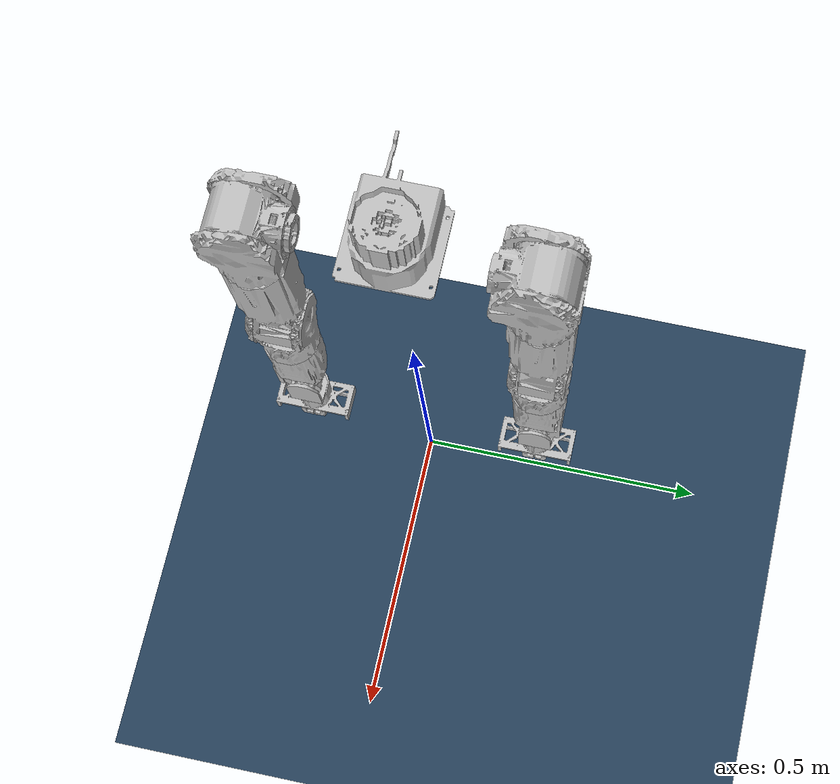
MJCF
<mujoco model="carm_d3">
  <option iterations="50" timestep="0.001" solver="PGS" gravity="0 0 -9.81" />

  <compiler angle="radian" meshdir="meshes" eulerseq="zyx" autolimits="true" />

  <default>
    <joint limited="true" damping="0.1" armature="0.01" frictionloss="0.1" />
    <geom condim="4" contype="1" conaffinity="15" friction="0.9 0.2 0.2" solref="0.001 2" />
    <motor ctrllimited="true" />
    <equality solref="0.001 2" />
    <default class="visualgeom">
      <geom material="visualgeom" condim="1" contype="0" conaffinity="0" />
    </default>
  </default>

  <asset>
    <mesh name="base_link" file="base_link.STL" />
    <mesh name="link1-LEFT" file="link1-LEFT.STL" />
    <mesh name="link2-LEFT" file="link2-LEFT.STL" />
    <mesh name="link3-LEFT" file="link3-LEFT.STL" />
    <mesh name="link4-LEFT" file="link4-LEFT.STL" />
    <mesh name="link5-LEFT" file="link5-LEFT.STL" />
    <mesh name="link6-LEFT" file="link6-LEFT.STL" />
    <mesh name="link7-LEFT" file="link7-LEFT.STL" />
    <mesh name="gripper_base" file="gripper_base.STL" />
    <mesh name="gripper_right" file="gripper_right.STL" />
    <mesh name="gripper_left" file="gripper_left.STL" />
    <mesh name="link1-RIGHT" file="link1-RIGHT.STL" />
    <mesh name="link2-RIGHT" file="link2-RIGHT.STL" />
    <mesh name="link3-RIGHT" file="link3-RIGHT.STL" />
    <mesh name="link4-RIGHT" file="link4-RIGHT.STL" />
    <mesh name="link5-RIGHT" file="link5-RIGHT.STL" />
    <mesh name="link6-RIGHT" file="link6-RIGHT.STL" />
    <mesh name="link7-RIGHT" file="link7-RIGHT.STL" />
    <texture type="2d" name="groundplane" builtin="checker" mark="edge" rgb1="0.2 0.3 0.4" rgb2="0.1 0.2 0.3"
      markrgb="0.8 0.8 0.8" width="300" height="300"/>
    <material name="groundplane" texture="groundplane" texuniform="true" texrepeat="5 5" reflectance="0.2"/>
    <material name="visualgeom" rgba="0.5 0.9 0.2 1" />
  </asset>

  <worldbody>
    <light directional="true" diffuse="0.4 0.4 0.4" specular="0.1 0.1 0.1" pos="0 0 5.0" dir="0 0 -1" castshadow="false" />
    <light directional="true" diffuse="0.6 0.6 0.6" specular="0.2 0.2 0.2" pos="0 0 4" dir="0 0 -1" />
    <geom name="floor" type="plane" pos="0 0 0" size="0 0 0.05" quat="1 0 0 0" material="groundplane" condim="3" conaffinity="15" />
    <camera name="fixed" pos="0 -3.0 1.3800389851226234" xyaxes="1 0 0 0 0 1" />
    <camera name="track" mode="trackcom" pos="0 -3.0 1.3800389851226234" xyaxes="1 0 0 0 0 1" />
    <body name="root" pos="0 0 0.8800389851226235" quat="1 0 0 0">
      <site name="imu" size="0.01" pos="0 0 0" />
      <geom type="mesh" contype="1" conaffinity="0" group="1" density="0" rgba="0.752941 0.752941 0.752941 1" mesh="base_link" class="visualgeom" />
      <geom type="mesh" rgba="0.752941 0.752941 0.752941 1" mesh="base_link" />
      <geom type="mesh" rgba="0.752941 0.752941 0.752941 1" mesh="base_link" contype="1" conaffinity="0" density="0" group="1" class="visualgeom" />
      <geom type="mesh" rgba="0.752941 0.752941 0.752941 1" mesh="base_link" />
      <body name="link1-LEFT" pos="0 0.13 0">
        <inertial pos="0.000986455 0.0667702 -0.000130249" quat="0.706988 0.707209 -0.00313411 -0.00362874" mass="1.68587" diaginertia="0.00133601 0.000845928 0.000766322" />
        <joint name="joint1-LEFT" damping="0.21311443" frictionloss="1.06226992" pos="0 0 0" axis="0 1 0" range="-2.79253 2.79253" actuatorfrcrange="-120 120" />
        <geom type="mesh" contype="1" conaffinity="0" group="1" density="0" rgba="0.752941 0.752941 0.752941 1" mesh="link1-LEFT" class="visualgeom" />
        <geom type="mesh" rgba="0.752941 0.752941 0.752941 1" mesh="link1-LEFT" />
        <geom type="mesh" rgba="0.752941 0.752941 0.752941 1" mesh="link1-LEFT" contype="1" conaffinity="0" density="0" group="1" class="visualgeom" />
        <geom type="mesh" rgba="0.752941 0.752941 0.752941 1" mesh="link1-LEFT" />
        <body name="link2-LEFT" pos="0 0.072 0">
          <inertial pos="0.0040664 -0.0011712 -0.11066" quat="0.92602 0.127559 0.347947 -0.0717581" mass="1.4556" diaginertia="0.00153465 0.00126897 0.00122267" />
          <joint name="joint2-LEFT" damping="0.21311443" frictionloss="1.06226992" pos="0 0 0" axis="1 0 0" range="-0.261799 3.14159" actuatorfrcrange="-120 120" />
          <geom type="mesh" contype="1" conaffinity="0" group="1" density="0" rgba="0.75294 0.75294 0.75294 1" mesh="link2-LEFT" class="visualgeom" />
          <geom type="mesh" rgba="0.75294 0.75294 0.75294 1" mesh="link2-LEFT" />
          <geom type="mesh" rgba="0.75294 0.75294 0.75294 1" mesh="link2-LEFT" contype="1" conaffinity="0" density="0" group="1" class="visualgeom" />
          <geom type="mesh" rgba="0.75294 0.75294 0.75294 1" mesh="link2-LEFT" />
          <body name="link3-LEFT" pos="0 0 -0.1681">
            <inertial pos="-6.11904e-05 0.000456591 -0.120357" quat="0.706677 -0.00828946 0.00474467 0.707472" mass="1.6829" diaginertia="0.00213431 0.00158839 0.00110936" />
            <joint name="joint3-LEFT" damping="0.06735483" frictionloss="0.56138582" pos="0 0 0" axis="0 0 1" range="-2.79253 2.79253" actuatorfrcrange="-70 70" />
            <geom type="mesh" contype="1" conaffinity="0" group="1" density="0" rgba="0.752941 0.752941 0.752941 1" mesh="link3-LEFT" class="visualgeom" />
            <geom type="mesh" rgba="0.752941 0.752941 0.752941 1" mesh="link3-LEFT" />
            <geom type="mesh" rgba="0.752941 0.752941 0.752941 1" mesh="link3-LEFT" contype="1" conaffinity="0" density="0" group="1" class="visualgeom" />
            <geom type="mesh" rgba="0.752941 0.752941 0.752941 1" mesh="link3-LEFT" />
            <body name="link4-LEFT" pos="0 0 -0.1624">
              <inertial pos="-0.000149725 -0.00459066 -0.073599" quat="0.708475 0.0856609 -0.087246 0.695064" mass="0.55313" diaginertia="0.000488701 0.000445926 0.000294003" />
              <joint name="joint4-LEFT" damping="0.06735483" frictionloss="0.56138582" pos="0 0 0" axis="0 1 0" range="-2.0944 2.0944" actuatorfrcrange="-70 70" />
              <geom type="mesh" contype="1" conaffinity="0" group="1" density="0" rgba="0.752941 0.752941 0.752941 1" mesh="link4-LEFT" class="visualgeom" />
              <geom type="mesh" rgba="0.752941 0.752941 0.752941 1" mesh="link4-LEFT" />
              <geom type="mesh" rgba="0.752941 0.752941 0.752941 1" mesh="link4-LEFT" contype="1" conaffinity="0" density="0" group="1" class="visualgeom" />
              <geom type="mesh" rgba="0.752941 0.752941 0.752941 1" mesh="link4-LEFT" />
              <body name="link5-LEFT" pos="0 0 -0.1223">
                <inertial pos="0.000163739 -0.000562329 -0.0730881" quat="0.998141 -0.0603973 0.000423689 0.00817498" mass="0.510186" diaginertia="0.000467169 0.000403133 0.000248238" />
                <joint name="joint5-LEFT" damping="0.09001984" frictionloss="0.27928131" pos="0 0 0" axis="0 0 1" range="-2.79253 2.79253" actuatorfrcrange="-16 16" />
                <geom type="mesh" contype="1" conaffinity="0" group="1" density="0" rgba="0.752941 0.752941 0.752941 1" mesh="link5-LEFT" class="visualgeom" />
                <geom type="mesh" rgba="0.752941 0.752941 0.752941 1" mesh="link5-LEFT" />
                <geom type="mesh" rgba="0.752941 0.752941 0.752941 1" mesh="link5-LEFT" contype="1" conaffinity="0" density="0" group="1" class="visualgeom" />
                <geom type="mesh" rgba="0.752941 0.752941 0.752941 1" mesh="link5-LEFT" />
                <body name="link6-LEFT" pos="0 0 -0.0865">
                  <inertial pos="-0.00102238 0.00757394 -0.061582" quat="0.812948 -0.159918 -0.0133172 0.55979" mass="0.458913" diaginertia="0.000280346 0.000259289 0.000182498" />
                  <joint name="joint6-LEFT" damping="0.09001984" frictionloss="0.27928131" pos="0 0 0" axis="0 1 0" range="-1.5708 1.5708" actuatorfrcrange="-16 16" />
                  <geom type="mesh" contype="1" conaffinity="0" group="1" density="0" rgba="0.752941 0.752941 0.752941 1" mesh="link6-LEFT" class="visualgeom" />
                  <geom type="mesh" rgba="0.752941 0.752941 0.752941 1" mesh="link6-LEFT" />
                  <geom type="mesh" rgba="0.752941 0.752941 0.752941 1" mesh="link6-LEFT" contype="1" conaffinity="0" density="0" group="1" class="visualgeom" />
                  <geom type="mesh" rgba="0.752941 0.752941 0.752941 1" mesh="link6-LEFT" />
                  <body name="link7-LEFT" pos="0 0 -0.07">
                    <inertial pos="0.00305936 2.39991e-05 -0.0808259" quat="0.982089 0.00125836 0.188391 0.00275051" mass="0.630761" diaginertia="0.000727616 0.00059245 0.000357821" />
                    <joint name="joint7-LEFT" damping="0.09001984" frictionloss="0.27928131" pos="0 0 0" axis="1 0 0" range="-1.5708 1.5708" actuatorfrcrange="-16 16" />
                    <geom type="mesh" contype="1" conaffinity="0" group="1" density="0" rgba="0.752941 0.752941 0.752941 1" mesh="link7-LEFT" class="visualgeom" />
                    <geom type="mesh" rgba="0.752941 0.752941 0.752941 1" mesh="link7-LEFT" />
                    <geom type="mesh" rgba="0.752941 0.752941 0.752941 1" mesh="link7-LEFT" contype="1" conaffinity="0" density="0" group="1" class="visualgeom" />
                    <geom type="mesh" rgba="0.752941 0.752941 0.752941 1" mesh="link7-LEFT" />
                    <geom pos="0 0 -0.057013" quat="-3.67321e-06 1 0 0" type="mesh" contype="1" conaffinity="0" group="1" density="0" rgba="0.752941 0.752941 0.752941 1" mesh="gripper_base" class="visualgeom" />
                    <geom type="mesh" rgba="0.752941 0.752941 0.752941 1" mesh="gripper_base" pos="0 0 -0.057013" quat="-3.67321e-06 1 0 0" />
                    <geom pos="0 0 -0.057013" quat="-3.67321e-06 1 0 0" type="mesh" rgba="0.752941 0.752941 0.752941 1" mesh="gripper_base" contype="1" conaffinity="0" density="0" group="1" class="visualgeom" />
                    <geom type="mesh" rgba="0.752941 0.752941 0.752941 1" mesh="gripper_base" pos="0 0 -0.057013" quat="-3.67321e-06 1 0 0" />
                    <body name="gripper_right-LEFT" pos="0.0012 0.0217006 -0.138013" quat="-0.707111 0.707103 0 0">
                      <inertial pos="-0.0012 -0.00680178 -0.0082819" quat="0.526835 0.47164 -0.47164 0.526835" mass="0.0836749" diaginertia="1.83701e-05 1.28447e-05 9.25539e-06" />
                      <joint name="gripper_right_joint-LEFT" pos="0 0 0" axis="0 0 1" type="slide" range="0 0.037" actuatorfrcrange="-27 27" />
                      <geom type="mesh" contype="1" conaffinity="0" group="1" density="0" rgba="0.752941 0.752941 0.752941 1" mesh="gripper_right" class="visualgeom" />
                      <geom type="mesh" rgba="0.752941 0.752941 0.752941 1" mesh="gripper_right" />
                      <geom type="mesh" rgba="0.752941 0.752941 0.752941 1" mesh="gripper_right" contype="1" conaffinity="0" density="0" group="1" class="visualgeom" />
                      <geom type="mesh" rgba="0.752941 0.752941 0.752941 1" mesh="gripper_right" />
                    </body>
                    <body name="gripper_left-LEFT" pos="0.0012 -0.0216994 -0.138013" quat="2.59736e-06 -2.59733e-06 -0.707108 0.707105">
                      <inertial pos="0.0012 -0.00680178 -0.0082819" quat="0.526835 0.47164 -0.47164 0.526835" mass="0.0836749" diaginertia="1.83701e-05 1.28447e-05 9.25539e-06" />
                      <joint name="gripper_left_joint-LEFT" pos="0 0 0" axis="0 0 1" type="slide" range="0 0.037" actuatorfrcrange="-27 27" />
                      <geom type="mesh" contype="1" conaffinity="0" group="1" density="0" rgba="0.752941 0.752941 0.752941 1" mesh="gripper_left" class="visualgeom" />
                      <geom type="mesh" rgba="0.752941 0.752941 0.752941 1" mesh="gripper_left" />
                      <geom type="mesh" rgba="0.752941 0.752941 0.752941 1" mesh="gripper_left" contype="1" conaffinity="0" density="0" group="1" class="visualgeom" />
                      <geom type="mesh" rgba="0.752941 0.752941 0.752941 1" mesh="gripper_left" />
                    </body>
                  </body>
                </body>
              </body>
            </body>
          </body>
        </body>
      </body>
      <body name="link1-RIGHT" pos="0 -0.13 0">
        <inertial pos="0.000986455 -0.0667702 0.000130249" quat="0.706988 0.707209 0.00313411 0.00362874" mass="1.68587" diaginertia="0.00133601 0.000845928 0.000766322" />
        <joint name="joint1-RIGHT" damping="0.21311443" frictionloss="1.06226992" pos="0 0 0" axis="0 1 0" range="-2.79253 2.79253" actuatorfrcrange="-120 120" />
        <geom type="mesh" contype="1" conaffinity="0" group="1" density="0" rgba="0.752941 0.752941 0.752941 1" mesh="link1-RIGHT" class="visualgeom" />
        <geom type="mesh" rgba="0.752941 0.752941 0.752941 1" mesh="link1-RIGHT" />
        <geom type="mesh" rgba="0.752941 0.752941 0.752941 1" mesh="link1-RIGHT" contype="1" conaffinity="0" density="0" group="1" class="visualgeom" />
        <geom type="mesh" rgba="0.752941 0.752941 0.752941 1" mesh="link1-RIGHT" />
        <body name="link2-RIGHT" pos="0 -0.072 0">
          <inertial pos="0.00403145 0.00100199 -0.110586" quat="0.926423 -0.125239 0.348474 0.0679849" mass="1.45372" diaginertia="0.00153486 0.00126893 0.00122247" />
          <joint name="joint2-RIGHT" damping="0.21311443" frictionloss="1.06226992" pos="0 0 0" axis="1 0 0" range="-3.14159 0.261799" actuatorfrcrange="-120 120" />
          <geom type="mesh" contype="1" conaffinity="0" group="1" density="0" rgba="0.752941 0.752941 0.752941 1" mesh="link2-RIGHT" class="visualgeom" />
          <geom type="mesh" rgba="0.752941 0.752941 0.752941 1" mesh="link2-RIGHT" />
          <geom type="mesh" rgba="0.752941 0.752941 0.752941 1" mesh="link2-RIGHT" contype="1" conaffinity="0" density="0" group="1" class="visualgeom" />
          <geom type="mesh" rgba="0.752941 0.752941 0.752941 1" mesh="link2-RIGHT" />
          <body name="link3-RIGHT" pos="0 0 -0.1681">
            <inertial pos="6.119e-05 -0.000456592 -0.120357" quat="0.706677 0.00828946 -0.00474467 0.707472" mass="1.6829" diaginertia="0.00213431 0.00158839 0.00110936" />
            <joint name="joint3-RIGHT" damping="0.06735483" frictionloss="0.56138582" pos="0 0 0" axis="0 0 1" range="-2.79253 2.79253" actuatorfrcrange="-70 70" />
            <geom type="mesh" contype="1" conaffinity="0" group="1" density="0" rgba="0.752941 0.752941 0.752941 1" mesh="link3-RIGHT" class="visualgeom" />
            <geom type="mesh" rgba="0.752941 0.752941 0.752941 1" mesh="link3-RIGHT" />
            <geom type="mesh" rgba="0.752941 0.752941 0.752941 1" mesh="link3-RIGHT" contype="1" conaffinity="0" density="0" group="1" class="visualgeom" />
            <geom type="mesh" rgba="0.752941 0.752941 0.752941 1" mesh="link3-RIGHT" />
            <body name="link4-RIGHT" pos="0 0 -0.1624">
              <inertial pos="0.000149725 0.00459066 -0.073599" quat="0.708475 -0.0856609 0.087246 0.695064" mass="0.55313" diaginertia="0.000488701 0.000445926 0.000294003" />
              <joint name="joint4-RIGHT" damping="0.06735483" frictionloss="0.56138582" pos="0 0 0" axis="0 1 0" range="-2.0944 2.0944" actuatorfrcrange="-70 70" />
              <geom type="mesh" contype="1" conaffinity="0" group="1" density="0" rgba="0.752941 0.752941 0.752941 1" mesh="link4-RIGHT" class="visualgeom" />
              <geom type="mesh" rgba="0.752941 0.752941 0.752941 1" mesh="link4-RIGHT" />
              <geom type="mesh" rgba="0.752941 0.752941 0.752941 1" mesh="link4-RIGHT" contype="1" conaffinity="0" density="0" group="1" class="visualgeom" />
              <geom type="mesh" rgba="0.752941 0.752941 0.752941 1" mesh="link4-RIGHT" />
              <body name="link5-RIGHT" pos="0 0 -0.1223">
                <inertial pos="-0.000163739 0.000562331 -0.0730881" quat="0.998141 0.0603975 -0.000423541 0.00817494" mass="0.510186" diaginertia="0.000467169 0.000403133 0.000248238" />
                <joint name="joint5-RIGHT" damping="0.09001984" frictionloss="0.27928131" pos="0 0 0" axis="0 0 1" range="-2.79253 2.79253" actuatorfrcrange="-16 16" />
                <geom type="mesh" contype="1" conaffinity="0" group="1" density="0" rgba="0.752941 0.752941 0.752941 1" mesh="link5-RIGHT" class="visualgeom" />
                <geom type="mesh" rgba="0.752941 0.752941 0.752941 1" mesh="link5-RIGHT" />
                <geom type="mesh" rgba="0.752941 0.752941 0.752941 1" mesh="link5-RIGHT" contype="1" conaffinity="0" density="0" group="1" class="visualgeom" />
                <geom type="mesh" rgba="0.752941 0.752941 0.752941 1" mesh="link5-RIGHT" />
                <body name="link6-RIGHT" pos="0 0 -0.0865">
                  <inertial pos="-0.00102238 -0.00757394 -0.061582" quat="0.812948 -0.159918 -0.0133172 0.55979" mass="0.458913" diaginertia="0.000280346 0.000259289 0.000182498" />
                  <joint name="joint6-RIGHT" damping="0.09001984" frictionloss="0.27928131" pos="0 0 0" axis="0 1 0" range="-1.5708 1.5708" actuatorfrcrange="-16 16" />
                  <geom type="mesh" contype="1" conaffinity="0" group="1" density="0" rgba="0.752941 0.752941 0.752941 1" mesh="link6-RIGHT" class="visualgeom" />
                  <geom type="mesh" rgba="0.752941 0.752941 0.752941 1" mesh="link6-RIGHT" />
                  <geom type="mesh" rgba="0.752941 0.752941 0.752941 1" mesh="link6-RIGHT" contype="1" conaffinity="0" density="0" group="1" class="visualgeom" />
                  <geom type="mesh" rgba="0.752941 0.752941 0.752941 1" mesh="link6-RIGHT" />
                  <body name="link7-RIGHT" pos="0 0 -0.07">
                    <inertial pos="0.00305936 2.3999e-05 -0.0808259" quat="0.982089 0.00125836 0.188391 0.00275051" mass="0.630761" diaginertia="0.000727616 0.00059245 0.000357821" />
                    <joint name="joint7-RIGHT" damping="0.09001984" frictionloss="0.27928131" pos="0 0 0" axis="1 0 0" range="-1.5708 1.5708" actuatorfrcrange="-16 16" />
                    <geom type="mesh" contype="1" conaffinity="0" group="1" density="0" rgba="0.752941 0.752941 0.752941 1" mesh="link7-RIGHT" class="visualgeom" />
                    <geom type="mesh" rgba="0.752941 0.752941 0.752941 1" mesh="link7-RIGHT" />
                    <geom type="mesh" rgba="0.752941 0.752941 0.752941 1" mesh="link7-RIGHT" contype="1" conaffinity="0" density="0" group="1" class="visualgeom" />
                    <geom type="mesh" rgba="0.752941 0.752941 0.752941 1" mesh="link7-RIGHT" />
                    <geom pos="0 0 -0.057013" quat="-3.67321e-06 1 0 0" type="mesh" contype="1" conaffinity="0" group="1" density="0" rgba="0.752941 0.752941 0.752941 1" mesh="gripper_base" class="visualgeom" />
                    <geom type="mesh" rgba="0.752941 0.752941 0.752941 1" mesh="gripper_base" pos="0 0 -0.057013" quat="-3.67321e-06 1 0 0" />
                    <geom pos="0 0 -0.057013" quat="-3.67321e-06 1 0 0" type="mesh" rgba="0.752941 0.752941 0.752941 1" mesh="gripper_base" contype="1" conaffinity="0" density="0" group="1" class="visualgeom" />
                    <geom type="mesh" rgba="0.752941 0.752941 0.752941 1" mesh="gripper_base" pos="0 0 -0.057013" quat="-3.67321e-06 1 0 0" />
                    <body name="gripper_right-RIGHT" pos="0.0012 0.0217006 -0.138013" quat="-0.707111 0.707103 0 0">
                      <inertial pos="-0.0012 -0.00680178 -0.0082819" quat="0.526835 0.47164 -0.47164 0.526835" mass="0.0836749" diaginertia="1.83701e-05 1.28447e-05 9.25539e-06" />
                      <joint name="gripper_right_joint-RIGHT" pos="0 0 0" axis="0 0 1" type="slide" range="0 0.037" actuatorfrcrange="-27 27" />
                      <geom type="mesh" contype="1" conaffinity="0" group="1" density="0" rgba="0.752941 0.752941 0.752941 1" mesh="gripper_right" class="visualgeom" />
                      <geom type="mesh" rgba="0.752941 0.752941 0.752941 1" mesh="gripper_right" />
                      <geom type="mesh" rgba="0.752941 0.752941 0.752941 1" mesh="gripper_right" contype="1" conaffinity="0" density="0" group="1" class="visualgeom" />
                      <geom type="mesh" rgba="0.752941 0.752941 0.752941 1" mesh="gripper_right" />
                    </body>
                    <body name="gripper_left-RIGHT" pos="0.0012 -0.0216994 -0.138013" quat="2.59736e-06 -2.59733e-06 -0.707108 0.707105">
                      <inertial pos="0.0012 -0.00680178 -0.0082819" quat="0.526835 0.47164 -0.47164 0.526835" mass="0.0836749" diaginertia="1.83701e-05 1.28447e-05 9.25539e-06" />
                      <joint name="gripper_left_joint-RIGHT" pos="0 0 0" axis="0 0 1" type="slide" range="0 0.037" actuatorfrcrange="-27 27" />
                      <geom type="mesh" contype="1" conaffinity="0" group="1" density="0" rgba="0.752941 0.752941 0.752941 1" mesh="gripper_left" class="visualgeom" />
                      <geom type="mesh" rgba="0.752941 0.752941 0.752941 1" mesh="gripper_left" />
                      <geom type="mesh" rgba="0.752941 0.752941 0.752941 1" mesh="gripper_left" contype="1" conaffinity="0" density="0" group="1" class="visualgeom" />
                      <geom type="mesh" rgba="0.752941 0.752941 0.752941 1" mesh="gripper_left" />
                    </body>
                  </body>
                </body>
              </body>
            </body>
          </body>
        </body>
      </body>
    </body>
  </worldbody>

  <contact>
    <exclude body1="root" body2="link1-RIGHT" />
    <exclude body1="root" body2="link1-LEFT" />

  </contact>

  <actuator>
    <motor name="joint1-LEFT" joint="joint1-LEFT" ctrllimited="true" ctrlrange="-120 120" gear="1" />
    <motor name="joint2-LEFT" joint="joint2-LEFT" ctrllimited="true" ctrlrange="-120 120" gear="1" />
    <motor name="joint3-LEFT" joint="joint3-LEFT" ctrllimited="true" ctrlrange="-70 70" gear="1" />
    <motor name="joint4-LEFT" joint="joint4-LEFT" ctrllimited="true" ctrlrange="-70 70" gear="1" />
    <motor name="joint5-LEFT" joint="joint5-LEFT" ctrllimited="true" ctrlrange="-16 16" gear="1" />
    <motor name="joint6-LEFT" joint="joint6-LEFT" ctrllimited="true" ctrlrange="-16 16" gear="1" />
    <motor name="joint7-LEFT" joint="joint7-LEFT" ctrllimited="true" ctrlrange="-16 16" gear="1" />
    <position name="gripper_right_joint-LEFT" joint="gripper_right_joint-LEFT" ctrllimited="true" ctrlrange="-27 27" kp="100" kv="20" />
    <position name="gripper_left_joint-LEFT" joint="gripper_left_joint-LEFT" ctrllimited="true" ctrlrange="-27 27" kp="100" kv="20" />
    <motor name="joint1-RIGHT" joint="joint1-RIGHT" ctrllimited="true" ctrlrange="-120 120" gear="1" />
    <motor name="joint2-RIGHT" joint="joint2-RIGHT" ctrllimited="true" ctrlrange="-120 120" gear="1" />
    <motor name="joint3-RIGHT" joint="joint3-RIGHT" ctrllimited="true" ctrlrange="-70 70" gear="1" />
    <motor name="joint4-RIGHT" joint="joint4-RIGHT" ctrllimited="true" ctrlrange="-70 70" gear="1" />
    <motor name="joint5-RIGHT" joint="joint5-RIGHT" ctrllimited="true" ctrlrange="-16 16" gear="1" />
    <motor name="joint6-RIGHT" joint="joint6-RIGHT" ctrllimited="true" ctrlrange="-16 16" gear="1" />
    <motor name="joint7-RIGHT" joint="joint7-RIGHT" ctrllimited="true" ctrlrange="-16 16" gear="1" />
    <position name="gripper_right_joint-RIGHT" joint="gripper_right_joint-RIGHT" ctrllimited="true" ctrlrange="-27 27" kp="100" kv="20" />
    <position name="gripper_left_joint-RIGHT" joint="gripper_left_joint-RIGHT" ctrllimited="true" ctrlrange="-27 27" kp="100" kv="20" />

  </actuator>

  <sensor>
    <actuatorpos name="joint1-LEFT_p" actuator="joint1-LEFT" />
    <actuatorvel name="joint1-LEFT_v" actuator="joint1-LEFT" />
    <actuatorfrc name="joint1-LEFT_f" actuator="joint1-LEFT" noise="0.001" />
    <actuatorpos name="joint2-LEFT_p" actuator="joint2-LEFT" />
    <actuatorvel name="joint2-LEFT_v" actuator="joint2-LEFT" />
    <actuatorfrc name="joint2-LEFT_f" actuator="joint2-LEFT" noise="0.001" />
    <actuatorpos name="joint3-LEFT_p" actuator="joint3-LEFT" />
    <actuatorvel name="joint3-LEFT_v" actuator="joint3-LEFT" />
    <actuatorfrc name="joint3-LEFT_f" actuator="joint3-LEFT" noise="0.001" />
    <actuatorpos name="joint4-LEFT_p" actuator="joint4-LEFT" />
    <actuatorvel name="joint4-LEFT_v" actuator="joint4-LEFT" />
    <actuatorfrc name="joint4-LEFT_f" actuator="joint4-LEFT" noise="0.001" />
    <actuatorpos name="joint5-LEFT_p" actuator="joint5-LEFT" />
    <actuatorvel name="joint5-LEFT_v" actuator="joint5-LEFT" />
    <actuatorfrc name="joint5-LEFT_f" actuator="joint5-LEFT" noise="0.001" />
    <actuatorpos name="joint6-LEFT_p" actuator="joint6-LEFT" />
    <actuatorvel name="joint6-LEFT_v" actuator="joint6-LEFT" />
    <actuatorfrc name="joint6-LEFT_f" actuator="joint6-LEFT" noise="0.001" />
    <actuatorpos name="joint7-LEFT_p" actuator="joint7-LEFT" />
    <actuatorvel name="joint7-LEFT_v" actuator="joint7-LEFT" />
    <actuatorfrc name="joint7-LEFT_f" actuator="joint7-LEFT" noise="0.001" />
    <actuatorpos name="gripper_right_joint-LEFT_p" actuator="gripper_right_joint-LEFT" />
    <actuatorvel name="gripper_right_joint-LEFT_v" actuator="gripper_right_joint-LEFT" />
    <actuatorfrc name="gripper_right_joint-LEFT_f" actuator="gripper_right_joint-LEFT" noise="0.001" />
    <actuatorpos name="gripper_left_joint-LEFT_p" actuator="gripper_left_joint-LEFT" />
    <actuatorvel name="gripper_left_joint-LEFT_v" actuator="gripper_left_joint-LEFT" />
    <actuatorfrc name="gripper_left_joint-LEFT_f" actuator="gripper_left_joint-LEFT" noise="0.001" />
    <actuatorpos name="joint1-RIGHT_p" actuator="joint1-RIGHT" />
    <actuatorvel name="joint1-RIGHT_v" actuator="joint1-RIGHT" />
    <actuatorfrc name="joint1-RIGHT_f" actuator="joint1-RIGHT" noise="0.001" />
    <actuatorpos name="joint2-RIGHT_p" actuator="joint2-RIGHT" />
    <actuatorvel name="joint2-RIGHT_v" actuator="joint2-RIGHT" />
    <actuatorfrc name="joint2-RIGHT_f" actuator="joint2-RIGHT" noise="0.001" />
    <actuatorpos name="joint3-RIGHT_p" actuator="joint3-RIGHT" />
    <actuatorvel name="joint3-RIGHT_v" actuator="joint3-RIGHT" />
    <actuatorfrc name="joint3-RIGHT_f" actuator="joint3-RIGHT" noise="0.001" />
    <actuatorpos name="joint4-RIGHT_p" actuator="joint4-RIGHT" />
    <actuatorvel name="joint4-RIGHT_v" actuator="joint4-RIGHT" />
    <actuatorfrc name="joint4-RIGHT_f" actuator="joint4-RIGHT" noise="0.001" />
    <actuatorpos name="joint5-RIGHT_p" actuator="joint5-RIGHT" />
    <actuatorvel name="joint5-RIGHT_v" actuator="joint5-RIGHT" />
    <actuatorfrc name="joint5-RIGHT_f" actuator="joint5-RIGHT" noise="0.001" />
    <actuatorpos name="joint6-RIGHT_p" actuator="joint6-RIGHT" />
    <actuatorvel name="joint6-RIGHT_v" actuator="joint6-RIGHT" />
    <actuatorfrc name="joint6-RIGHT_f" actuator="joint6-RIGHT" noise="0.001" />
    <actuatorpos name="joint7-RIGHT_p" actuator="joint7-RIGHT" />
    <actuatorvel name="joint7-RIGHT_v" actuator="joint7-RIGHT" />
    <actuatorfrc name="joint7-RIGHT_f" actuator="joint7-RIGHT" noise="0.001" />
    <actuatorpos name="gripper_right_joint-RIGHT_p" actuator="gripper_right_joint-RIGHT" />
    <actuatorvel name="gripper_right_joint-RIGHT_v" actuator="gripper_right_joint-RIGHT" />
    <actuatorfrc name="gripper_right_joint-RIGHT_f" actuator="gripper_right_joint-RIGHT" noise="0.001" />
    <actuatorpos name="gripper_left_joint-RIGHT_p" actuator="gripper_left_joint-RIGHT" />
    <actuatorvel name="gripper_left_joint-RIGHT_v" actuator="gripper_left_joint-RIGHT" />
    <actuatorfrc name="gripper_left_joint-RIGHT_f" actuator="gripper_left_joint-RIGHT" noise="0.001" />
    <framequat name="orientation" objtype="site" noise="0.001" objname="imu" />
    <gyro name="angular-velocity" site="imu" noise="0.005" cutoff="34.9" />
  </sensor>

  <equality>
      <joint joint1="gripper_right_joint-LEFT" joint2="gripper_left_joint-LEFT" polycoef="0 1 0 0 0"/>
      <joint joint1="gripper_right_joint-RIGHT" joint2="gripper_left_joint-RIGHT" polycoef="0 1 0 0 0"/>

  </equality>
</mujoco>
